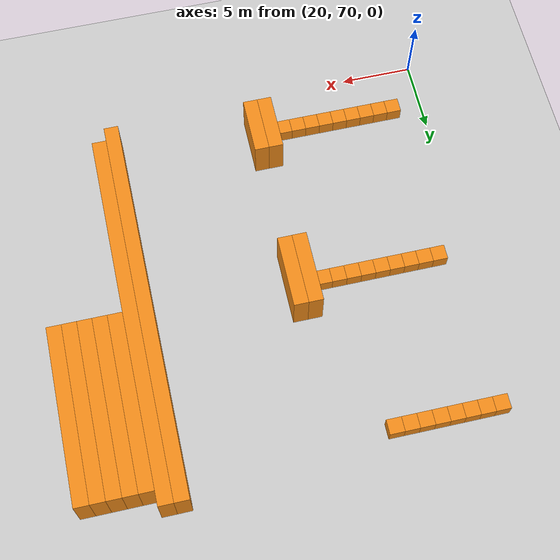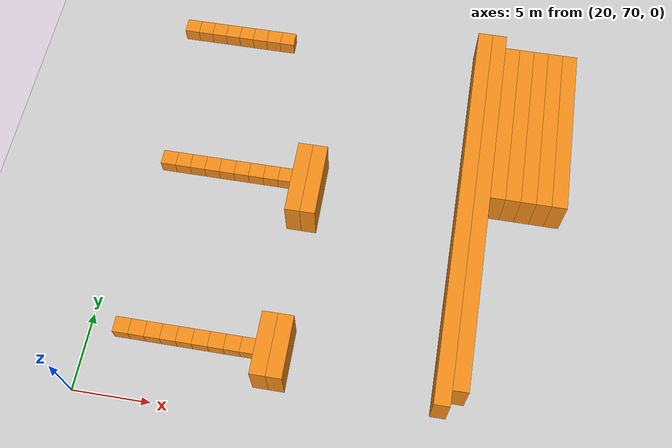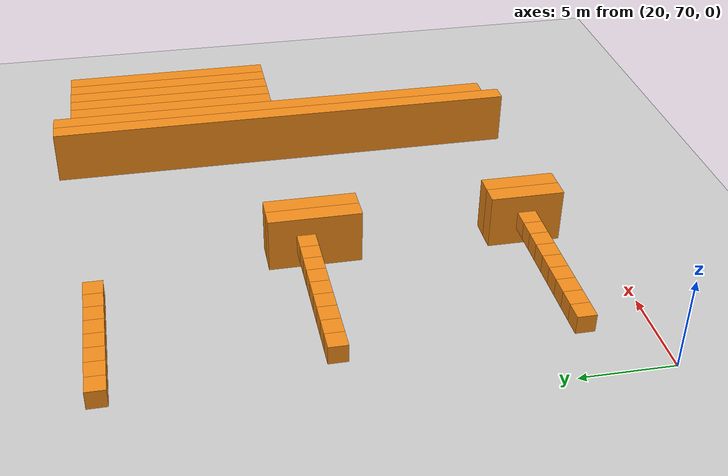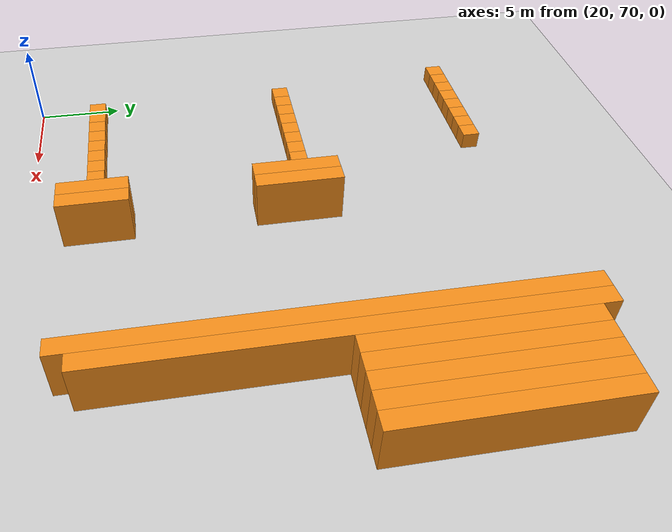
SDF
<sdf version="1.6">
 <world name="default">
  <include><uri>model://ground_plane</uri></include>
  <model name="unit_box_231">
   <pose>21.50    97.00     1.50 0 0 0</pose>
   <static>1</static>
   <link name="link">
    <inertial>
     <mass>5000</mass>
     <inertia><ixx>200</ixx><ixy>0</ixy><ixz>0</ixz><iyy>200</iyy><iyz>0</iyz><izz>200</izz></inertia>
    </inertial>
    <collision name="collision"><geometry><box><size>1 1 1</size></box></geometry></collision>
    <visual name="visual">
     <geometry><box><size>1 1 1</size></box></geometry>
     <material>
      <script><name>Gazebo/Orange</name><uri>file://media/materials/scripts/gazebo.material</uri></script>
     </material>
    </visual>
   </link>
  </model>
  <model name="unit_box_242">
   <pose>22.50    74.00     1.50 0 0 0</pose>
   <static>1</static>
   <link name="link">
    <inertial>
     <mass>5000</mass>
     <inertia><ixx>200</ixx><ixy>0</ixy><ixz>0</ixz><iyy>200</iyy><iyz>0</iyz><izz>200</izz></inertia>
    </inertial>
    <collision name="collision"><geometry><box><size>1 1 1</size></box></geometry></collision>
    <visual name="visual">
     <geometry><box><size>1 1 1</size></box></geometry>
     <material>
      <script><name>Gazebo/Orange</name><uri>file://media/materials/scripts/gazebo.material</uri></script>
     </material>
    </visual>
   </link>
  </model>
  <model name="unit_box_243">
   <pose>22.50    86.00     1.50 0 0 0</pose>
   <static>1</static>
   <link name="link">
    <inertial>
     <mass>5000</mass>
     <inertia><ixx>200</ixx><ixy>0</ixy><ixz>0</ixz><iyy>200</iyy><iyz>0</iyz><izz>200</izz></inertia>
    </inertial>
    <collision name="collision"><geometry><box><size>1 1 1</size></box></geometry></collision>
    <visual name="visual">
     <geometry><box><size>1 1 1</size></box></geometry>
     <material>
      <script><name>Gazebo/Orange</name><uri>file://media/materials/scripts/gazebo.material</uri></script>
     </material>
    </visual>
   </link>
  </model>
  <model name="unit_box_244">
   <pose>22.50    97.00     1.50 0 0 0</pose>
   <static>1</static>
   <link name="link">
    <inertial>
     <mass>5000</mass>
     <inertia><ixx>200</ixx><ixy>0</ixy><ixz>0</ixz><iyy>200</iyy><iyz>0</iyz><izz>200</izz></inertia>
    </inertial>
    <collision name="collision"><geometry><box><size>1 1 1</size></box></geometry></collision>
    <visual name="visual">
     <geometry><box><size>1 1 1</size></box></geometry>
     <material>
      <script><name>Gazebo/Orange</name><uri>file://media/materials/scripts/gazebo.material</uri></script>
     </material>
    </visual>
   </link>
  </model>
  <model name="unit_box_255">
   <pose>23.50    74.00     1.50 0 0 0</pose>
   <static>1</static>
   <link name="link">
    <inertial>
     <mass>5000</mass>
     <inertia><ixx>200</ixx><ixy>0</ixy><ixz>0</ixz><iyy>200</iyy><iyz>0</iyz><izz>200</izz></inertia>
    </inertial>
    <collision name="collision"><geometry><box><size>1 1 1</size></box></geometry></collision>
    <visual name="visual">
     <geometry><box><size>1 1 1</size></box></geometry>
     <material>
      <script><name>Gazebo/Orange</name><uri>file://media/materials/scripts/gazebo.material</uri></script>
     </material>
    </visual>
   </link>
  </model>
  <model name="unit_box_256">
   <pose>23.50    86.00     1.50 0 0 0</pose>
   <static>1</static>
   <link name="link">
    <inertial>
     <mass>5000</mass>
     <inertia><ixx>200</ixx><ixy>0</ixy><ixz>0</ixz><iyy>200</iyy><iyz>0</iyz><izz>200</izz></inertia>
    </inertial>
    <collision name="collision"><geometry><box><size>1 1 1</size></box></geometry></collision>
    <visual name="visual">
     <geometry><box><size>1 1 1</size></box></geometry>
     <material>
      <script><name>Gazebo/Orange</name><uri>file://media/materials/scripts/gazebo.material</uri></script>
     </material>
    </visual>
   </link>
  </model>
  <model name="unit_box_257">
   <pose>23.50    97.00     1.50 0 0 0</pose>
   <static>1</static>
   <link name="link">
    <inertial>
     <mass>5000</mass>
     <inertia><ixx>200</ixx><ixy>0</ixy><ixz>0</ixz><iyy>200</iyy><iyz>0</iyz><izz>200</izz></inertia>
    </inertial>
    <collision name="collision"><geometry><box><size>1 1 1</size></box></geometry></collision>
    <visual name="visual">
     <geometry><box><size>1 1 1</size></box></geometry>
     <material>
      <script><name>Gazebo/Orange</name><uri>file://media/materials/scripts/gazebo.material</uri></script>
     </material>
    </visual>
   </link>
  </model>
  <model name="unit_box_268">
   <pose>24.50    74.00     1.50 0 0 0</pose>
   <static>1</static>
   <link name="link">
    <inertial>
     <mass>5000</mass>
     <inertia><ixx>200</ixx><ixy>0</ixy><ixz>0</ixz><iyy>200</iyy><iyz>0</iyz><izz>200</izz></inertia>
    </inertial>
    <collision name="collision"><geometry><box><size>1 1 1</size></box></geometry></collision>
    <visual name="visual">
     <geometry><box><size>1 1 1</size></box></geometry>
     <material>
      <script><name>Gazebo/Orange</name><uri>file://media/materials/scripts/gazebo.material</uri></script>
     </material>
    </visual>
   </link>
  </model>
  <model name="unit_box_269">
   <pose>24.50    86.00     1.50 0 0 0</pose>
   <static>1</static>
   <link name="link">
    <inertial>
     <mass>5000</mass>
     <inertia><ixx>200</ixx><ixy>0</ixy><ixz>0</ixz><iyy>200</iyy><iyz>0</iyz><izz>200</izz></inertia>
    </inertial>
    <collision name="collision"><geometry><box><size>1 1 1</size></box></geometry></collision>
    <visual name="visual">
     <geometry><box><size>1 1 1</size></box></geometry>
     <material>
      <script><name>Gazebo/Orange</name><uri>file://media/materials/scripts/gazebo.material</uri></script>
     </material>
    </visual>
   </link>
  </model>
  <model name="unit_box_270">
   <pose>24.50    97.00     1.50 0 0 0</pose>
   <static>1</static>
   <link name="link">
    <inertial>
     <mass>5000</mass>
     <inertia><ixx>200</ixx><ixy>0</ixy><ixz>0</ixz><iyy>200</iyy><iyz>0</iyz><izz>200</izz></inertia>
    </inertial>
    <collision name="collision"><geometry><box><size>1 1 1</size></box></geometry></collision>
    <visual name="visual">
     <geometry><box><size>1 1 1</size></box></geometry>
     <material>
      <script><name>Gazebo/Orange</name><uri>file://media/materials/scripts/gazebo.material</uri></script>
     </material>
    </visual>
   </link>
  </model>
  <model name="unit_box_281">
   <pose>25.50    74.00     1.50 0 0 0</pose>
   <static>1</static>
   <link name="link">
    <inertial>
     <mass>5000</mass>
     <inertia><ixx>200</ixx><ixy>0</ixy><ixz>0</ixz><iyy>200</iyy><iyz>0</iyz><izz>200</izz></inertia>
    </inertial>
    <collision name="collision"><geometry><box><size>1 1 1</size></box></geometry></collision>
    <visual name="visual">
     <geometry><box><size>1 1 1</size></box></geometry>
     <material>
      <script><name>Gazebo/Orange</name><uri>file://media/materials/scripts/gazebo.material</uri></script>
     </material>
    </visual>
   </link>
  </model>
  <model name="unit_box_282">
   <pose>25.50    86.00     1.50 0 0 0</pose>
   <static>1</static>
   <link name="link">
    <inertial>
     <mass>5000</mass>
     <inertia><ixx>200</ixx><ixy>0</ixy><ixz>0</ixz><iyy>200</iyy><iyz>0</iyz><izz>200</izz></inertia>
    </inertial>
    <collision name="collision"><geometry><box><size>1 1 1</size></box></geometry></collision>
    <visual name="visual">
     <geometry><box><size>1 1 1</size></box></geometry>
     <material>
      <script><name>Gazebo/Orange</name><uri>file://media/materials/scripts/gazebo.material</uri></script>
     </material>
    </visual>
   </link>
  </model>
  <model name="unit_box_283">
   <pose>25.50    97.00     1.50 0 0 0</pose>
   <static>1</static>
   <link name="link">
    <inertial>
     <mass>5000</mass>
     <inertia><ixx>200</ixx><ixy>0</ixy><ixz>0</ixz><iyy>200</iyy><iyz>0</iyz><izz>200</izz></inertia>
    </inertial>
    <collision name="collision"><geometry><box><size>1 1 1</size></box></geometry></collision>
    <visual name="visual">
     <geometry><box><size>1 1 1</size></box></geometry>
     <material>
      <script><name>Gazebo/Orange</name><uri>file://media/materials/scripts/gazebo.material</uri></script>
     </material>
    </visual>
   </link>
  </model>
  <model name="unit_box_294">
   <pose>26.50    74.00     1.50 0 0 0</pose>
   <static>1</static>
   <link name="link">
    <inertial>
     <mass>5000</mass>
     <inertia><ixx>200</ixx><ixy>0</ixy><ixz>0</ixz><iyy>200</iyy><iyz>0</iyz><izz>200</izz></inertia>
    </inertial>
    <collision name="collision"><geometry><box><size>1 1 1</size></box></geometry></collision>
    <visual name="visual">
     <geometry><box><size>1 1 1</size></box></geometry>
     <material>
      <script><name>Gazebo/Orange</name><uri>file://media/materials/scripts/gazebo.material</uri></script>
     </material>
    </visual>
   </link>
  </model>
  <model name="unit_box_295">
   <pose>26.50    86.00     1.50 0 0 0</pose>
   <static>1</static>
   <link name="link">
    <inertial>
     <mass>5000</mass>
     <inertia><ixx>200</ixx><ixy>0</ixy><ixz>0</ixz><iyy>200</iyy><iyz>0</iyz><izz>200</izz></inertia>
    </inertial>
    <collision name="collision"><geometry><box><size>1 1 1</size></box></geometry></collision>
    <visual name="visual">
     <geometry><box><size>1 1 1</size></box></geometry>
     <material>
      <script><name>Gazebo/Orange</name><uri>file://media/materials/scripts/gazebo.material</uri></script>
     </material>
    </visual>
   </link>
  </model>
  <model name="unit_box_296">
   <pose>26.50    97.00     1.50 0 0 0</pose>
   <static>1</static>
   <link name="link">
    <inertial>
     <mass>5000</mass>
     <inertia><ixx>200</ixx><ixy>0</ixy><ixz>0</ixz><iyy>200</iyy><iyz>0</iyz><izz>200</izz></inertia>
    </inertial>
    <collision name="collision"><geometry><box><size>1 1 1</size></box></geometry></collision>
    <visual name="visual">
     <geometry><box><size>1 1 1</size></box></geometry>
     <material>
      <script><name>Gazebo/Orange</name><uri>file://media/materials/scripts/gazebo.material</uri></script>
     </material>
    </visual>
   </link>
  </model>
  <model name="unit_box_307">
   <pose>27.50    74.00     1.50 0 0 0</pose>
   <static>1</static>
   <link name="link">
    <inertial>
     <mass>5000</mass>
     <inertia><ixx>200</ixx><ixy>0</ixy><ixz>0</ixz><iyy>200</iyy><iyz>0</iyz><izz>200</izz></inertia>
    </inertial>
    <collision name="collision"><geometry><box><size>1 1 1</size></box></geometry></collision>
    <visual name="visual">
     <geometry><box><size>1 1 1</size></box></geometry>
     <material>
      <script><name>Gazebo/Orange</name><uri>file://media/materials/scripts/gazebo.material</uri></script>
     </material>
    </visual>
   </link>
  </model>
  <model name="unit_box_308">
   <pose>27.50    86.00     1.50 0 0 0</pose>
   <static>1</static>
   <link name="link">
    <inertial>
     <mass>5000</mass>
     <inertia><ixx>200</ixx><ixy>0</ixy><ixz>0</ixz><iyy>200</iyy><iyz>0</iyz><izz>200</izz></inertia>
    </inertial>
    <collision name="collision"><geometry><box><size>1 1 1</size></box></geometry></collision>
    <visual name="visual">
     <geometry><box><size>1 1 1</size></box></geometry>
     <material>
      <script><name>Gazebo/Orange</name><uri>file://media/materials/scripts/gazebo.material</uri></script>
     </material>
    </visual>
   </link>
  </model>
  <model name="unit_box_309">
   <pose>27.50    97.00     1.50 0 0 0</pose>
   <static>1</static>
   <link name="link">
    <inertial>
     <mass>5000</mass>
     <inertia><ixx>200</ixx><ixy>0</ixy><ixz>0</ixz><iyy>200</iyy><iyz>0</iyz><izz>200</izz></inertia>
    </inertial>
    <collision name="collision"><geometry><box><size>1 1 1</size></box></geometry></collision>
    <visual name="visual">
     <geometry><box><size>1 1 1</size></box></geometry>
     <material>
      <script><name>Gazebo/Orange</name><uri>file://media/materials/scripts/gazebo.material</uri></script>
     </material>
    </visual>
   </link>
  </model>
  <model name="unit_box_320">
   <pose>28.50    74.00     1.50 0 0 0</pose>
   <static>1</static>
   <link name="link">
    <inertial>
     <mass>5000</mass>
     <inertia><ixx>200</ixx><ixy>0</ixy><ixz>0</ixz><iyy>200</iyy><iyz>0</iyz><izz>200</izz></inertia>
    </inertial>
    <collision name="collision"><geometry><box><size>1 1 1</size></box></geometry></collision>
    <visual name="visual">
     <geometry><box><size>1 1 1</size></box></geometry>
     <material>
      <script><name>Gazebo/Orange</name><uri>file://media/materials/scripts/gazebo.material</uri></script>
     </material>
    </visual>
   </link>
  </model>
  <model name="unit_box_321">
   <pose>28.50    86.00     1.50 0 0 0</pose>
   <static>1</static>
   <link name="link">
    <inertial>
     <mass>5000</mass>
     <inertia><ixx>200</ixx><ixy>0</ixy><ixz>0</ixz><iyy>200</iyy><iyz>0</iyz><izz>200</izz></inertia>
    </inertial>
    <collision name="collision"><geometry><box><size>1 1 1</size></box></geometry></collision>
    <visual name="visual">
     <geometry><box><size>1 1 1</size></box></geometry>
     <material>
      <script><name>Gazebo/Orange</name><uri>file://media/materials/scripts/gazebo.material</uri></script>
     </material>
    </visual>
   </link>
  </model>
  <model name="unit_box_322">
   <pose>28.50    97.00     1.50 0 0 0</pose>
   <static>1</static>
   <link name="link">
    <inertial>
     <mass>5000</mass>
     <inertia><ixx>200</ixx><ixy>0</ixy><ixz>0</ixz><iyy>200</iyy><iyz>0</iyz><izz>200</izz></inertia>
    </inertial>
    <collision name="collision"><geometry><box><size>1 1 1</size></box></geometry></collision>
    <visual name="visual">
     <geometry><box><size>1 1 1</size></box></geometry>
     <material>
      <script><name>Gazebo/Orange</name><uri>file://media/materials/scripts/gazebo.material</uri></script>
     </material>
    </visual>
   </link>
  </model>
  <model name="unit_box_333">
   <pose>29.50    74.00     1.50 0 0 0</pose>
   <static>1</static>
   <link name="link">
    <inertial>
     <mass>5000</mass>
     <inertia><ixx>200</ixx><ixy>0</ixy><ixz>0</ixz><iyy>200</iyy><iyz>0</iyz><izz>200</izz></inertia>
    </inertial>
    <collision name="collision"><geometry><box><size>1 1 1</size></box></geometry></collision>
    <visual name="visual">
     <geometry><box><size>1 1 1</size></box></geometry>
     <material>
      <script><name>Gazebo/Orange</name><uri>file://media/materials/scripts/gazebo.material</uri></script>
     </material>
    </visual>
   </link>
  </model>
  <model name="unit_box_334">
   <pose>29.50    86.00     1.50 0 0 0</pose>
   <static>1</static>
   <link name="link">
    <inertial>
     <mass>5000</mass>
     <inertia><ixx>200</ixx><ixy>0</ixy><ixz>0</ixz><iyy>200</iyy><iyz>0</iyz><izz>200</izz></inertia>
    </inertial>
    <collision name="collision"><geometry><box><size>1 1 1</size></box></geometry></collision>
    <visual name="visual">
     <geometry><box><size>1 1 1</size></box></geometry>
     <material>
      <script><name>Gazebo/Orange</name><uri>file://media/materials/scripts/gazebo.material</uri></script>
     </material>
    </visual>
   </link>
  </model>
  <model name="unit_box_346">
   <pose>30.50    74.00     1.50 0 0 0</pose>
   <static>1</static>
   <link name="link">
    <inertial>
     <mass>5000</mass>
     <inertia><ixx>200</ixx><ixy>0</ixy><ixz>0</ixz><iyy>200</iyy><iyz>0</iyz><izz>200</izz></inertia>
    </inertial>
    <collision name="collision"><geometry><box><size>1 1 1</size></box></geometry></collision>
    <visual name="visual">
     <geometry><box><size>1 1 1</size></box></geometry>
     <material>
      <script><name>Gazebo/Orange</name><uri>file://media/materials/scripts/gazebo.material</uri></script>
     </material>
    </visual>
   </link>
  </model>
  <model name="unit_box_347">
   <pose>30.50    86.00     1.50 0 0 0</pose>
   <static>1</static>
   <link name="link">
    <inertial>
     <mass>5000</mass>
     <inertia><ixx>200</ixx><ixy>0</ixy><ixz>0</ixz><iyy>200</iyy><iyz>0</iyz><izz>200</izz></inertia>
    </inertial>
    <collision name="collision"><geometry><box><size>1 1 1</size></box></geometry></collision>
    <visual name="visual">
     <geometry><box><size>1 1 1</size></box></geometry>
     <material>
      <script><name>Gazebo/Orange</name><uri>file://media/materials/scripts/gazebo.material</uri></script>
     </material>
    </visual>
   </link>
  </model>
  <model name="unit_box_359">
   <pose>31.50    74.00     1.50 0 0 0</pose>
   <static>1</static>
   <link name="link">
    <inertial>
     <mass>5000</mass>
     <inertia><ixx>200</ixx><ixy>0</ixy><ixz>0</ixz><iyy>200</iyy><iyz>0</iyz><izz>200</izz></inertia>
    </inertial>
    <collision name="collision"><geometry><box><size>1 4 3</size></box></geometry></collision>
    <visual name="visual">
     <geometry><box><size>1 4 3</size></box></geometry>
     <material>
      <script><name>Gazebo/Orange</name><uri>file://media/materials/scripts/gazebo.material</uri></script>
     </material>
    </visual>
   </link>
  </model>
  <model name="unit_box_360">
   <pose>31.50    85.50     1.50 0 0 0</pose>
   <static>1</static>
   <link name="link">
    <inertial>
     <mass>5000</mass>
     <inertia><ixx>200</ixx><ixy>0</ixy><ixz>0</ixz><iyy>200</iyy><iyz>0</iyz><izz>200</izz></inertia>
    </inertial>
    <collision name="collision"><geometry><box><size>1 5 3</size></box></geometry></collision>
    <visual name="visual">
     <geometry><box><size>1 5 3</size></box></geometry>
     <material>
      <script><name>Gazebo/Orange</name><uri>file://media/materials/scripts/gazebo.material</uri></script>
     </material>
    </visual>
   </link>
  </model>
  <model name="unit_box_374">
   <pose>32.50    74.00     1.50 0 0 0</pose>
   <static>1</static>
   <link name="link">
    <inertial>
     <mass>5000</mass>
     <inertia><ixx>200</ixx><ixy>0</ixy><ixz>0</ixz><iyy>200</iyy><iyz>0</iyz><izz>200</izz></inertia>
    </inertial>
    <collision name="collision"><geometry><box><size>1 4 3</size></box></geometry></collision>
    <visual name="visual">
     <geometry><box><size>1 4 3</size></box></geometry>
     <material>
      <script><name>Gazebo/Orange</name><uri>file://media/materials/scripts/gazebo.material</uri></script>
     </material>
    </visual>
   </link>
  </model>
  <model name="unit_box_375">
   <pose>32.50    85.50     1.50 0 0 0</pose>
   <static>1</static>
   <link name="link">
    <inertial>
     <mass>5000</mass>
     <inertia><ixx>200</ixx><ixy>0</ixy><ixz>0</ixz><iyy>200</iyy><iyz>0</iyz><izz>200</izz></inertia>
    </inertial>
    <collision name="collision"><geometry><box><size>1 5 3</size></box></geometry></collision>
    <visual name="visual">
     <geometry><box><size>1 5 3</size></box></geometry>
     <material>
      <script><name>Gazebo/Orange</name><uri>file://media/materials/scripts/gazebo.material</uri></script>
     </material>
    </visual>
   </link>
  </model>
  <model name="unit_box_440">
   <pose>42.50    85.50     1.50 0 0 0</pose>
   <static>1</static>
   <link name="link">
    <inertial>
     <mass>5000</mass>
     <inertia><ixx>200</ixx><ixy>0</ixy><ixz>0</ixz><iyy>200</iyy><iyz>0</iyz><izz>200</izz></inertia>
    </inertial>
    <collision name="collision"><geometry><box><size>1 27 3</size></box></geometry></collision>
    <visual name="visual">
     <geometry><box><size>1 27 3</size></box></geometry>
     <material>
      <script><name>Gazebo/Orange</name><uri>file://media/materials/scripts/gazebo.material</uri></script>
     </material>
    </visual>
   </link>
  </model>
  <model name="unit_box_454">
   <pose>43.50    86.00     1.50 0 0 0</pose>
   <static>1</static>
   <link name="link">
    <inertial>
     <mass>5000</mass>
     <inertia><ixx>200</ixx><ixy>0</ixy><ixz>0</ixz><iyy>200</iyy><iyz>0</iyz><izz>200</izz></inertia>
    </inertial>
    <collision name="collision"><geometry><box><size>1 26 3</size></box></geometry></collision>
    <visual name="visual">
     <geometry><box><size>1 26 3</size></box></geometry>
     <material>
      <script><name>Gazebo/Orange</name><uri>file://media/materials/scripts/gazebo.material</uri></script>
     </material>
    </visual>
   </link>
  </model>
  <model name="unit_box_469">
   <pose>44.50    92.00     1.50 0 0 0</pose>
   <static>1</static>
   <link name="link">
    <inertial>
     <mass>5000</mass>
     <inertia><ixx>200</ixx><ixy>0</ixy><ixz>0</ixz><iyy>200</iyy><iyz>0</iyz><izz>200</izz></inertia>
    </inertial>
    <collision name="collision"><geometry><box><size>1 12 3</size></box></geometry></collision>
    <visual name="visual">
     <geometry><box><size>1 12 3</size></box></geometry>
     <material>
      <script><name>Gazebo/Orange</name><uri>file://media/materials/scripts/gazebo.material</uri></script>
     </material>
    </visual>
   </link>
  </model>
  <model name="unit_box_484">
   <pose>45.50    92.00     1.50 0 0 0</pose>
   <static>1</static>
   <link name="link">
    <inertial>
     <mass>5000</mass>
     <inertia><ixx>200</ixx><ixy>0</ixy><ixz>0</ixz><iyy>200</iyy><iyz>0</iyz><izz>200</izz></inertia>
    </inertial>
    <collision name="collision"><geometry><box><size>1 12 3</size></box></geometry></collision>
    <visual name="visual">
     <geometry><box><size>1 12 3</size></box></geometry>
     <material>
      <script><name>Gazebo/Orange</name><uri>file://media/materials/scripts/gazebo.material</uri></script>
     </material>
    </visual>
   </link>
  </model>
  <model name="unit_box_499">
   <pose>46.50    92.00     1.50 0 0 0</pose>
   <static>1</static>
   <link name="link">
    <inertial>
     <mass>5000</mass>
     <inertia><ixx>200</ixx><ixy>0</ixy><ixz>0</ixz><iyy>200</iyy><iyz>0</iyz><izz>200</izz></inertia>
    </inertial>
    <collision name="collision"><geometry><box><size>1 12 3</size></box></geometry></collision>
    <visual name="visual">
     <geometry><box><size>1 12 3</size></box></geometry>
     <material>
      <script><name>Gazebo/Orange</name><uri>file://media/materials/scripts/gazebo.material</uri></script>
     </material>
    </visual>
   </link>
  </model>
  <model name="unit_box_512">
   <pose>47.50    92.00     1.50 0 0 0</pose>
   <static>1</static>
   <link name="link">
    <inertial>
     <mass>5000</mass>
     <inertia><ixx>200</ixx><ixy>0</ixy><ixz>0</ixz><iyy>200</iyy><iyz>0</iyz><izz>200</izz></inertia>
    </inertial>
    <collision name="collision"><geometry><box><size>1 12 3</size></box></geometry></collision>
    <visual name="visual">
     <geometry><box><size>1 12 3</size></box></geometry>
     <material>
      <script><name>Gazebo/Orange</name><uri>file://media/materials/scripts/gazebo.material</uri></script>
     </material>
    </visual>
   </link>
  </model>
  <model name="unit_box_525">
   <pose>48.50    92.00     1.50 0 0 0</pose>
   <static>1</static>
   <link name="link">
    <inertial>
     <mass>5000</mass>
     <inertia><ixx>200</ixx><ixy>0</ixy><ixz>0</ixz><iyy>200</iyy><iyz>0</iyz><izz>200</izz></inertia>
    </inertial>
    <collision name="collision"><geometry><box><size>1 12 3</size></box></geometry></collision>
    <visual name="visual">
     <geometry><box><size>1 12 3</size></box></geometry>
     <material>
      <script><name>Gazebo/Orange</name><uri>file://media/materials/scripts/gazebo.material</uri></script>
     </material>
    </visual>
   </link>
  </model>
 </world>
</sdf>
